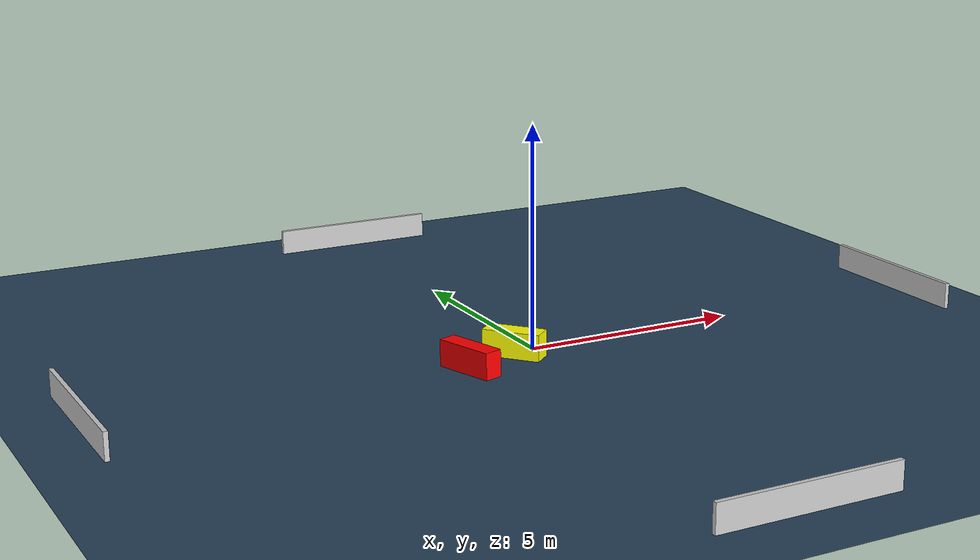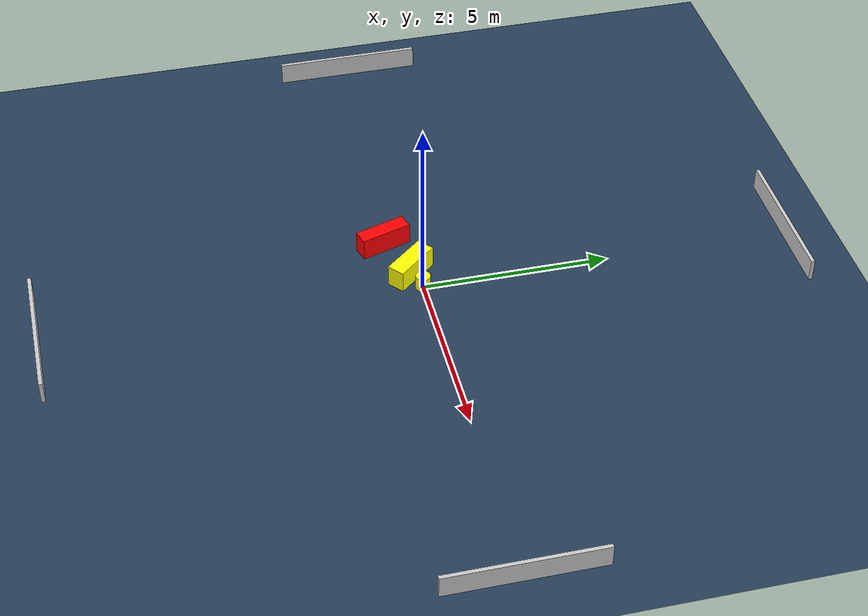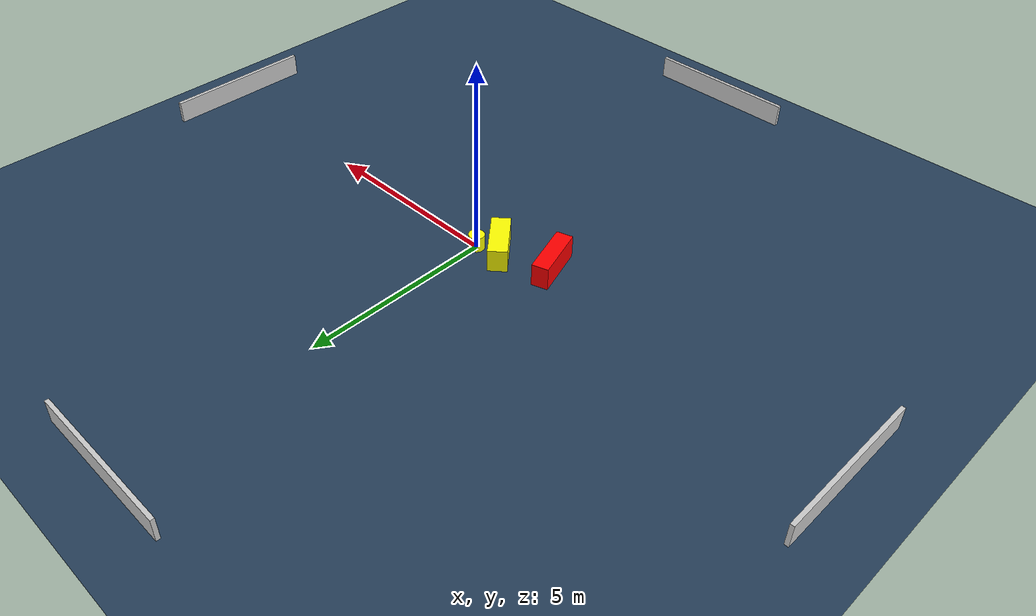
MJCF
<?xml version="1.0" ?>
<mujoco model="generated_environment">
  <option timestep="0.01" integrator="RK4" cone="elliptic"/>
  <default>
    <geom density="1"/>
  </default>
  <asset>
    <texture builtin="gradient" height="3072" name="skybox" rgb1="0.3 0.5 0.7" rgb2="0 0 0" type="skybox" width="512"/>
    <texture builtin="checker" height="300" name="groundplane" rgb1="0.2 0.3 0.4" rgb2="0.1 0.2 0.3" type="2d" width="300"/>
    <material name="groundplane" reflectance="0.2" texrepeat="5 5" texture="groundplane"/>
  </asset>
  <worldbody>
    <light dir="0 0 -1" directional="true" pos="0 0 1.5"/>
    <geom condim="3" friction="0.5 0.005 0.001" material="groundplane" name="floor" pos="0 0 0" size="0 0 0.05" type="plane"/>
    <body name="walls">
      <geom name="wall_1" condim="4" pos="-10.0 0.0 0.3" rgba="0.800000011920929 0.800000011920929 0.800000011920929 1.0" size="0.05 2.0 0.3" type="box"/>
      <geom name="wall_2" condim="4" pos="10.0 0.0 0.3" rgba="0.800000011920929 0.800000011920929 0.800000011920929 1.0" size="0.05 2.0 0.3" type="box"/>
      <geom name="wall_3" condim="4" pos="0.0 -10.0 0.3" rgba="0.800000011920929 0.800000011920929 0.800000011920929 1.0" size="2.0 0.05 0.3" type="box"/>
      <geom name="wall_4" condim="4" pos="0.0 10.0 0.3" rgba="0.800000011920929 0.800000011920929 0.800000011920929 1.0" size="2.0 0.05 0.3" type="box"/>
    </body>
    <body name="robot">
      <joint name="joint_x" type="slide" pos="0 0 0" axis="1 0 0"/>
      <joint name="joint_y" type="slide" pos="0 0 0" axis="0 1 0"/>
      <geom name="robot" type="cylinder" pos="0.0 0.0 0.2" size="0.2 0.2 0.0" mass="5.0" friction="1.0 0.005 0.0001" condim="4" rgba="1.0 1.0 0.0 1.0"/>
    </body>
    <body name="obstacle_1_movable">
      <geom name="obstacle_1_movable" condim="4" pos="-0.5630932346438311 -0.2054123003043797 0.3" euler="0 0 310.48801093055954" friction="0.0 0.005 0.001" rgba="1.0 1.0 0.0 1.0" size="0.6553580271954502 0.24146491458357233 0.3" type="box" mass="0.1"/>
      <joint type="free"/>
    </body>
    <body name="obstacle_2_static">
      <geom name="obstacle_2_static" condim="4" pos="-1.8619395005553392 -0.6652448027065747 0.3" euler="0 0 107.76166355910064" friction="0.0 0.005 0.001" rgba="1.0 0.0 0.0 1.0" size="0.6990402810974949 0.21048234298498714 0.3" type="box"/>
    </body>
  </worldbody>
  <actuator>
    <motor name="actuator_x" joint="joint_x" gear="1" ctrlrange="-1 1"/>
    <motor name="actuator_y" joint="joint_y" gear="1" ctrlrange="-1 1"/>
  </actuator>
</mujoco>
